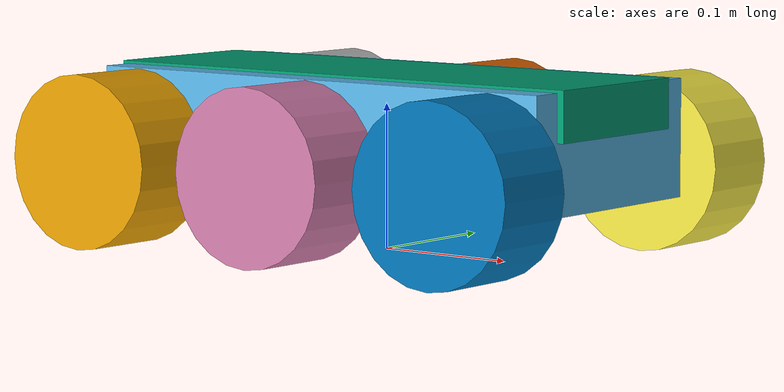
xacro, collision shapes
<?xml version="1.0"?>
        <robot name="phylax" xmlns:xacro="http://ros.org/wiki/xacro">

        <xacro:include filename="$(find phylax_description)/urdf/phylax_base.gazebo.xacro" />
        <xacro:property name="PI" value="3.1415926535897931" />

        <xacro:property name="chassis_length" value="0.380" />
        <xacro:property name="chassis_width" value="0.310" />
        <xacro:property name="chassis_height" value="0.184" />

        <xacro:property name="wheel_radius" value="0.065" />
        <xacro:property name="wheel_width" value="0.060" />

        <link name="base_footprint">
                <visual>
                        <geometry>
                                <box size="0.38 0.310 0.000001"/>
                        </geometry>
                        <material name="grey">
                                <color rgba="0.5 0.5 0.5 0.5"/>
                        </material>
                </visual>
        </link>

        <link name="base_link">
                <collision>
                        <origin xyz="0 0 0.02" rpy="0 0 0"/>
                        <geometry>
                                <box size="0.37 0.165 0.08"/>
                        </geometry>
                </collision>
                <visual>
                        <origin xyz="0.0 0.0002 -0.018" rpy="${PI/2} 0 0"/>
                        <geometry>
                                <mesh filename="package://phylax_description/meshes/wild_thumper_6wd_chassis.stl" scale="0.001 0.001 0.001" />
                        </geometry>
                </visual>
                <inertial>
                        <origin xyz="0.00 0 -0.02" rpy="0 0 0"/>
                        <mass value="1"/>
                        <inertia ixx="1.0" ixy="0.0" ixz="0.0" iyy="1.0" iyz="0.0" izz="1.0"/>
                </inertial>
        </link>

        <link name="mounting_plate">
                <visual>
                        <origin xyz="0.0 0 -0.078" rpy="${PI/2} 0 0"/>
                        <geometry>
                                <mesh filename="package://phylax_description/meshes/wild_thumper_6wd_top.stl" scale="0.001 0.001 0.001" />
                        </geometry>
                </visual>
                <collision>
                        <origin xyz="0 0 -0.015" rpy="0 0 0"/>
                        <geometry>
                                <box size="0.38 0.12 0.034"/>
                        </geometry>
                </collision>

        </link>
        <joint name="base_link_joint" type="fixed">
                <parent link="base_footprint"/>
                <child link="base_link"/>
                <origin xyz="0.0 0.0 0.062" rpy="0 0 0"/>
        </joint>

        <joint name="mounting_plate_joint" type="fixed">
                <parent link="base_link"/>
                <child link="mounting_plate"/>
                <origin xyz="0.0 0.0 0.06" rpy="0 0 0"/>
        </joint>

        <xacro:macro name="wheel" params="pos side xyz rpy xyzi rpyi cy">
                <link name="${pos}_${side}_wheel">
                        <visual>
                                <origin xyz="${xyz}" rpy="${rpy}"/>
                                <geometry>
                                        <mesh filename="package://phylax_description/meshes/wild_thumper_6wd_wheel.stl" scale="0.001 0.001 0.001"/>
                                </geometry>
                        </visual>
                        <collision>
                                <origin xyz="0 ${cy} 0" rpy="${PI/2} 0 0"/>
                                <geometry>
                                        <cylinder radius="0.06" length="0.062"/>
                                </geometry>
                        </collision>
                        <inertial>
                                <origin xyz="0 0 0" rpy="0 0 0"/>
                                <mass value="0.1"/>
                                <inertia ixx="0.005" ixy="0" ixz="0" iyy="0.005" iyz="0" izz="0.005"/>
                        </inertial>
                </link>

                <gazebo reference="${pos}_${side}_wheel">
                        <mu1 value="1.0"/>
                        <mu2 value="1.0"/>
                        <kp value="1000000.0" />
                        <kd value="1.0" />
                        <fdir1 value="1 0 0"/>
                </gazebo>

                <joint name="${pos}_${side}_wheel_joint" type="continuous">
                        <parent link="base_link"/>
                        <child link="${pos}_${side}_wheel"/>
                        <axis xyz="0 1 0"/>
                        <origin xyz="${xyzi}" rpy="${rpyi}"/>
                </joint>

                <transmission name="${pos}_${side}_wheel_trans" type="SimpleTransmission">
                        <type>transmission_interface/SimpleTransmission</type>
                        <joint name="${pos}_${side}_wheel_joint">
                                <hardwareInterface>hardware_interface/VelocityJointInterface</hardwareInterface>
                        </joint>
                        <actuator name="{pos}_${side}_wheel_motor">
                                <mechanicalReduction>1</mechanicalReduction>
                        </actuator>
                </transmission>
        </xacro:macro>

        <xacro:wheel pos="front" side="left"  xyz="-0.15 -0.08 -0.02" rpy="${PI/2} 0 0" xyzi="0.15 0.08 0.0" rpyi="0 0 0" cy="0.038"/>
        <xacro:wheel pos="front" side="right" xyz="-0.15 0.08 0.02" rpy="${-PI/2} 0 0" xyzi="0.15 -0.08 0.0" rpyi="0 0 0" cy="-0.038"/>
        <xacro:wheel pos="center" side="left"  xyz="-0.15 -0.08 -0.02" rpy="${PI/2} 0 0"  xyzi="0.0 0.08 0.0" rpyi="0 0 0" cy="0.038"/>
        <xacro:wheel pos="center" side="right" xyz="-0.15 0.08 0.02" rpy="${-PI/2} 0 0"  xyzi="0.0 -0.08 0.0" rpyi="0 0 0" cy="-0.038"/>
        <xacro:wheel pos="rear" side="left"  xyz="-0.15 -0.08 -0.02" rpy="${PI/2} 0 0"  xyzi="-0.15 0.08 0.0" rpyi="0 0 0" cy="0.038"/>
        <xacro:wheel pos="rear" side="right" xyz="-0.15 0.08 0.02" rpy="${-PI/2} 0 0" xyzi="-0.15 -0.08 0.0" rpyi="0 0 0" cy="-0.038"/>
 </robot>
